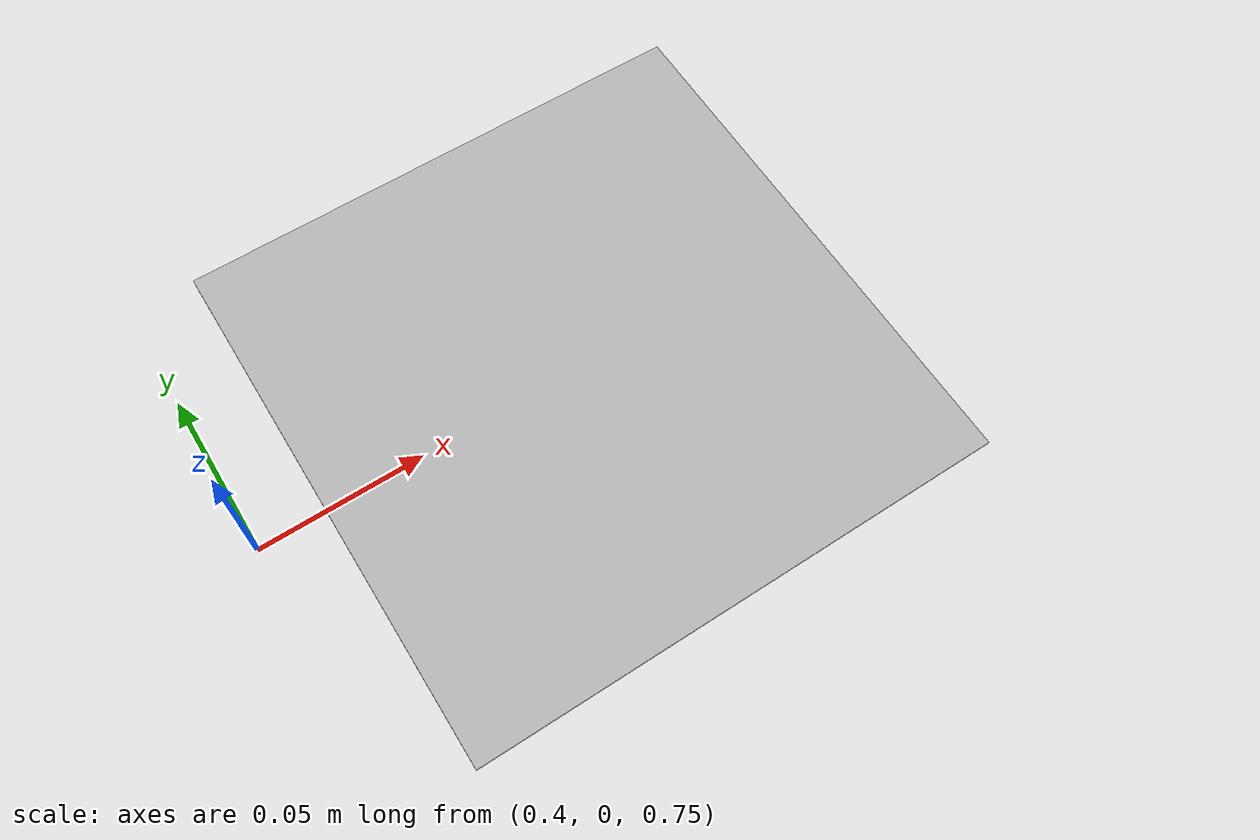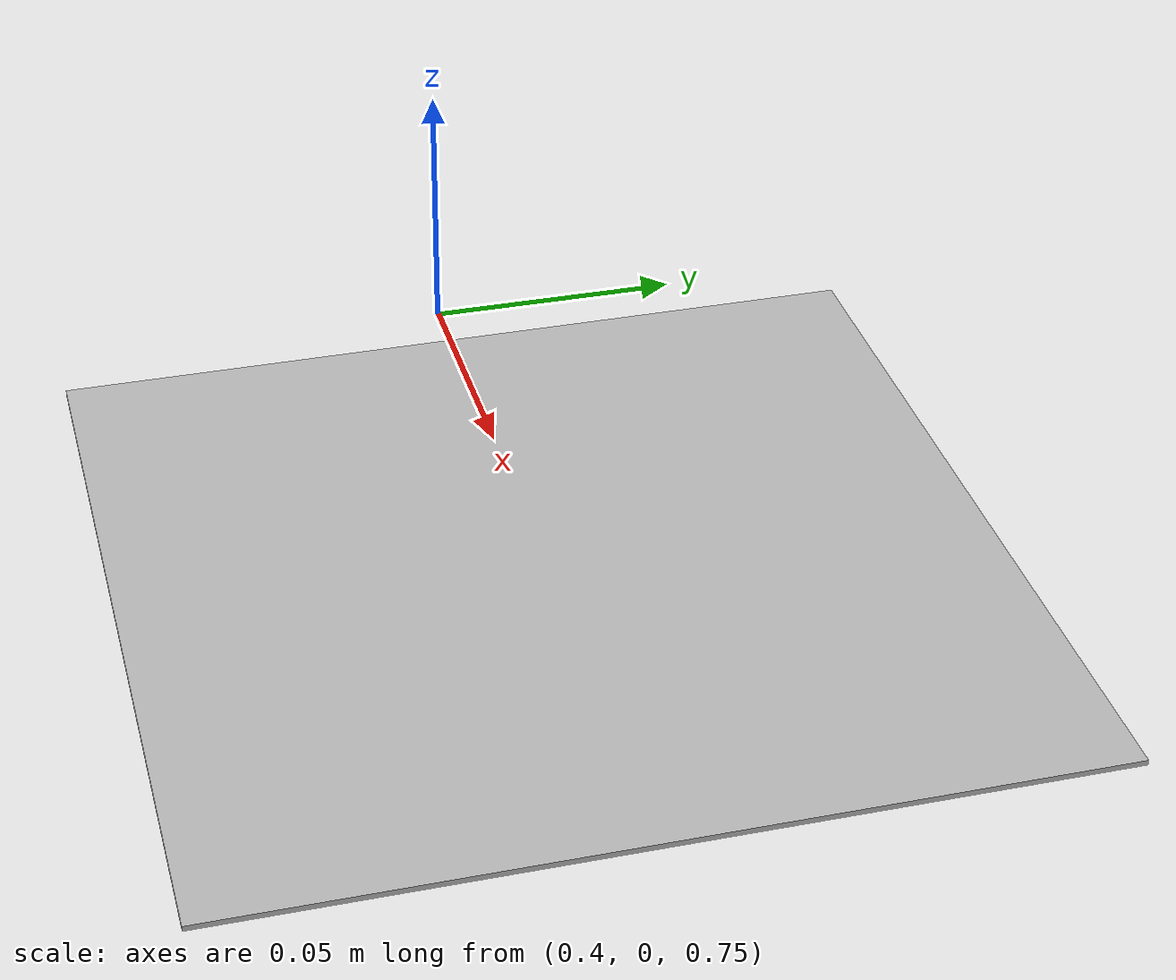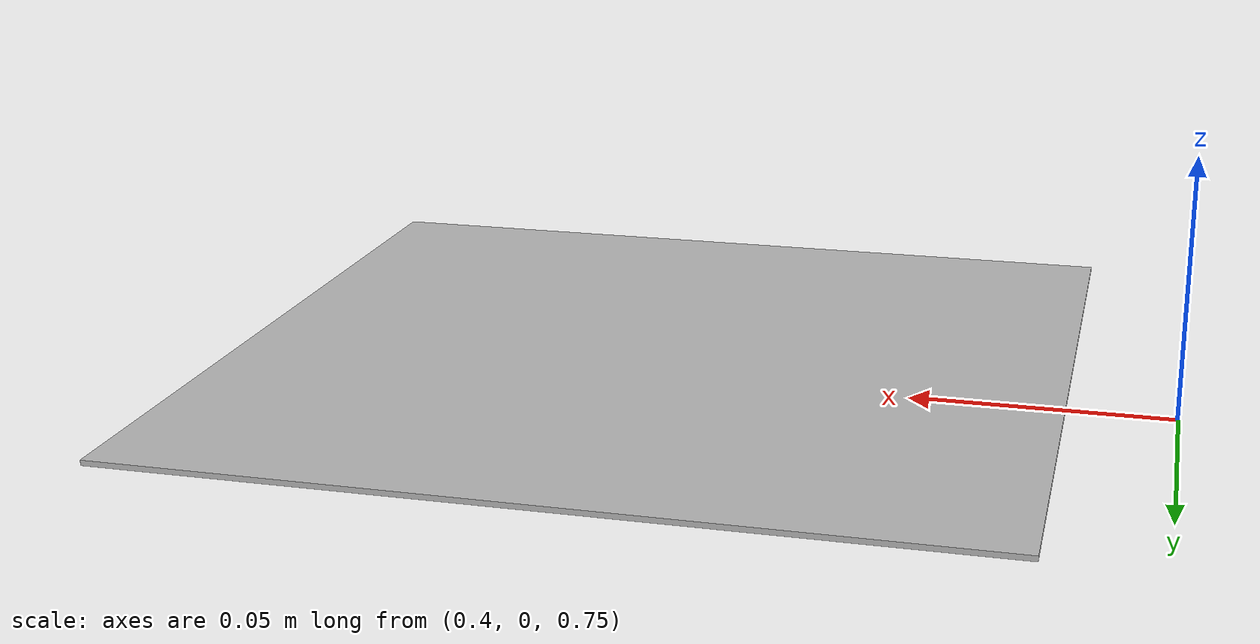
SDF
<?xml version="1.0" ?>
<sdf version="1.4">
  <world name="default">
    <physics type="ode">
      <gravity>0 0 -9.81</gravity>
      <ode>
        <solver>
          <type>quick</type>
          <iters>20</iters>
          <sor>1.0</sor>
        </solver>
        <constraints>
          <cfm>0.0</cfm>
          <erp>0.2</erp>
          <contact_max_correcting_vel>100.0</contact_max_correcting_vel>
          <contact_surface_layer>0.0</contact_surface_layer>
        </constraints>
      </ode>
      <real_time_update_rate>1000</real_time_update_rate>
      <max_step_size>0.001</max_step_size>
    </physics>

    <!-- A global light source -->
    <include>
      <uri>model://sun</uri>
    </include>

    <!-- A ground plane -->
    <include>
      <uri>model://ground_plane</uri>
    </include>
    <include>
      <uri>model://aruco_marker_original_582</uri>
      <pose>0.5 0.0 0.755 0 0 0</pose>
      <static>1</static>
    </include>
  </world>
</sdf>

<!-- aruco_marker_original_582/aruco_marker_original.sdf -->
<sdf version="1.4">
  <model name="aruco_marker_original_582">
    <static>0</static>
    <link name="marker">
      <inertial>
        <mass>0.1</mass>
        <inertia>
          <ixx>0.000000</ixx>
          <ixy>0.000000</ixy>
          <ixz>0.000000</ixz>
          <iyy>0.000000</iyy>
          <iyz>0.000000</iyz>
          <izz>0.000000</izz>
        </inertia>
      </inertial>
      <visual name="visual">
        <pose>0 0 0 0 0 1.57</pose>
        <geometry>
          <box>
            <size>0.16 0.16 0.001</size>
            <!-- SIZE OF THE MARKER + MARGIN -->
          </box>
        </geometry>
        <material>
          <script>
	    <uri>model://aruco_marker_original_582/material/scripts</uri>
	    <uri>model://aruco_marker_original_582/material/textures</uri>
            <name>Aruco/aruco_marker_original_582</name>
          </script>
        </material>
      </visual>
      <collision name="collision">
        <geometry>
          <box>
            <size>0.16 0.16 0.001</size>
            <!-- SIZE OF THE MARKER + MARGIN -->
          </box>
        </geometry>
        <surface>
          <bounce />
          <friction>
            <ode />
          </friction>
          <contact>
            <ode />
          </contact>
        </surface>
      </collision>
      <self_collide>1</self_collide>
      <kinematic>0</kinematic>
      <gravity>1</gravity>
    </link>
  </model>
</sdf>
